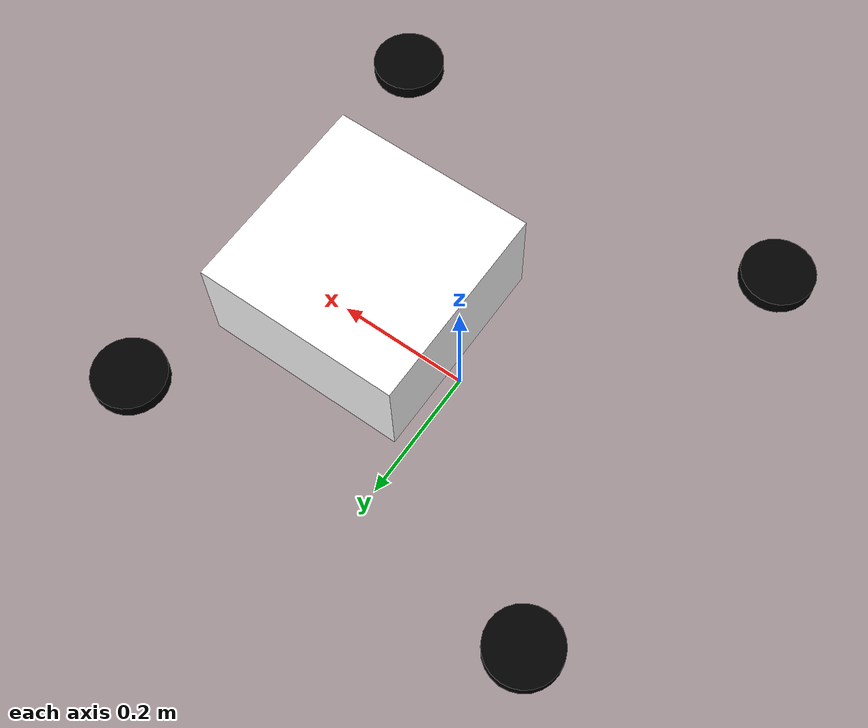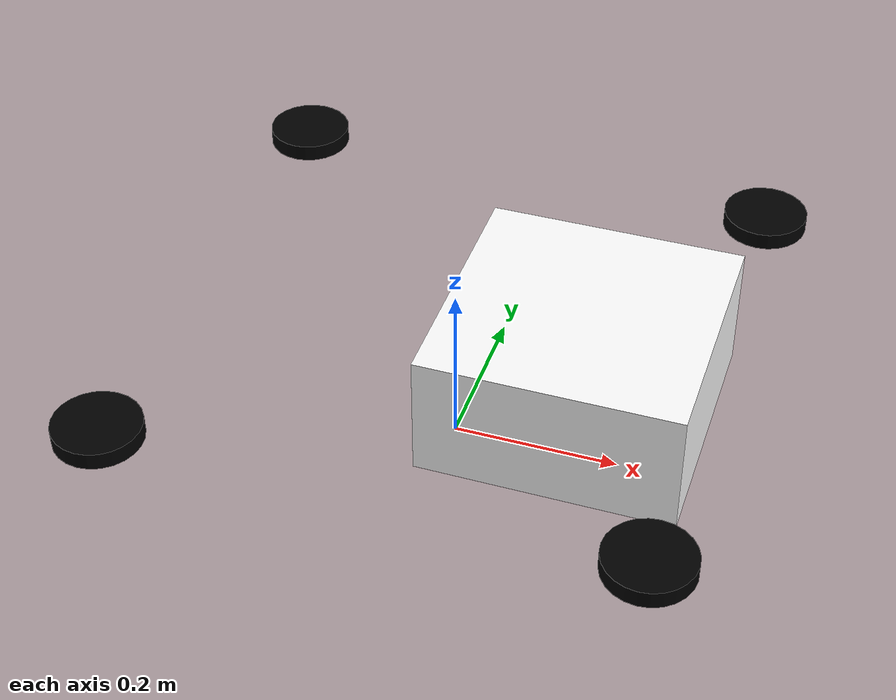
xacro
<?xml version="1.0"?>
<robot xmlns:xacro="http://www.ros.org/wiki/xacro">

    <!-- Define Materials -->
    <material name="white">
        <color rgba="1 1 1 1" />
    </material>

    <material name="orange">
        <color rgba="1 0.3 0.1 1" />
    </material>

    <material name="blue">
        <color rgba="0.2 0.2 1 1" />
    </material>

    <material name="black">
        <color rgba="0 0 0 1" />
    </material>

    <!-- Base Link -->
    <link name="base_link">
        <!-- No geometry, just a reference point -->
    </link>

    <!-- Fixed Joint to attach the chassis to the base -->
    <joint name="chassis_joint" type="fixed">
        <parent link="base_link" />
        <child link="chassis" />
        <origin xyz="0.0 0 0.075" />
    </joint>

    <!-- Chassis Link -->
    <link name="chassis">
        <visual>
            <origin xyz="0.15 0 0.075"/>
            <geometry>
                <box size="0.3 0.3 0.15"/>
            </geometry>
            <material name="white"/>
        </visual>
    </link>

    <!-- Adding wheels as additional links and joints -->
    <!-- Front Left Wheel -->
    <link name="front_left_wheel">
        <visual>
            <origin xyz="0.15 0.15 0.05"/>
            <geometry>
                <cylinder radius="0.05" length="0.02"/>
            </geometry>
            <material name="black"/>
        </visual>
    </link>

    <joint name="front_left_wheel_joint" type="revolute">
        <parent link="chassis"/>
        <child link="front_left_wheel"/>
        <origin xyz="0.15 0.15 0.05"/>
        <axis xyz="0 0 1"/>
        <limit effort="50.0" velocity="1.0" lower="0.0" upper="1.0"/>
    </joint>

    <!-- Front Right Wheel -->
    <link name="front_right_wheel">
        <visual>
            <origin xyz="0.15 -0.15 0.05"/>
            <geometry>
                <cylinder radius="0.05" length="0.02"/>
            </geometry>
            <material name="black"/>
        </visual>
    </link>

    <joint name="front_right_wheel_joint" type="revolute">
        <parent link="chassis"/>
        <child link="front_right_wheel"/>
        <origin xyz="0.15 -0.15 0.05"/>
        <axis xyz="0 0 1"/>
        <limit effort="50.0" velocity="1.0" lower="0.0" upper="1.0"/>
    </joint>

    <!-- Back Left Wheel -->
    <link name="back_left_wheel">
        <visual>
            <origin xyz="-0.15 0.15 0.05"/>
            <geometry>
                <cylinder radius="0.05" length="0.02"/>
            </geometry>
            <material name="black"/>
        </visual>
    </link>

    <joint name="back_left_wheel_joint" type="revolute">
        <parent link="chassis"/>
        <child link="back_left_wheel"/>
        <origin xyz="-0.15 0.15 0.05"/>
        <axis xyz="0 0 1"/>
        <limit effort="50.0" velocity="1.0" lower="0.0" upper="1.0"/>
    </joint>

    <!-- Back Right Wheel -->
    <link name="back_right_wheel">
        <visual>
            <origin xyz="-0.15 -0.15 0.05"/>
            <geometry>
                <cylinder radius="0.05" length="0.02"/>
            </geometry>
            <material name="black"/>
        </visual>
    </link>

    <joint name="back_right_wheel_joint" type="revolute">
        <parent link="chassis"/>
        <child link="back_right_wheel"/>
        <origin xyz="-0.15 -0.15 0.05"/>
        <axis xyz="0 0 1"/>
        <limit effort="50.0" velocity="1.0" lower="0.0" upper="1.0"/>
    </joint>

</robot>
